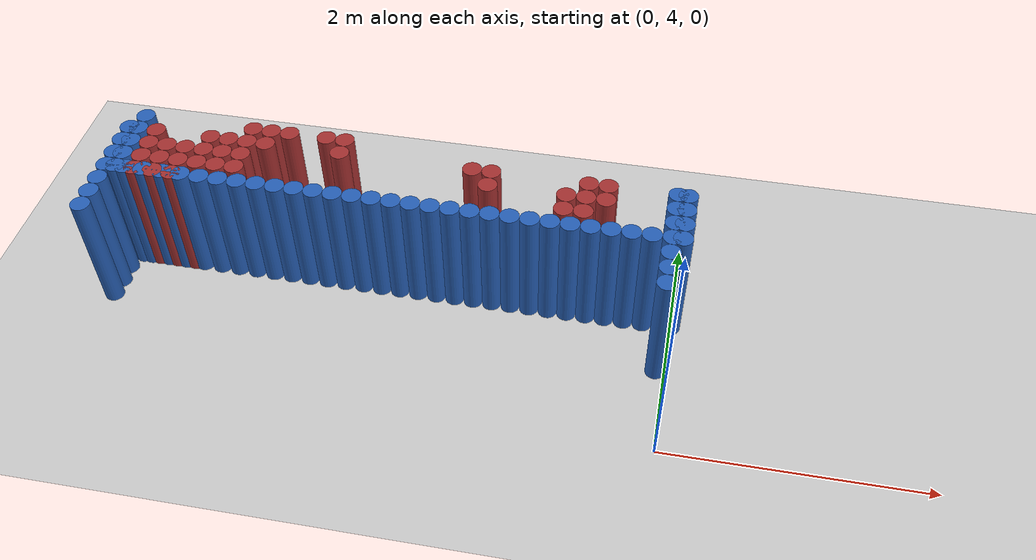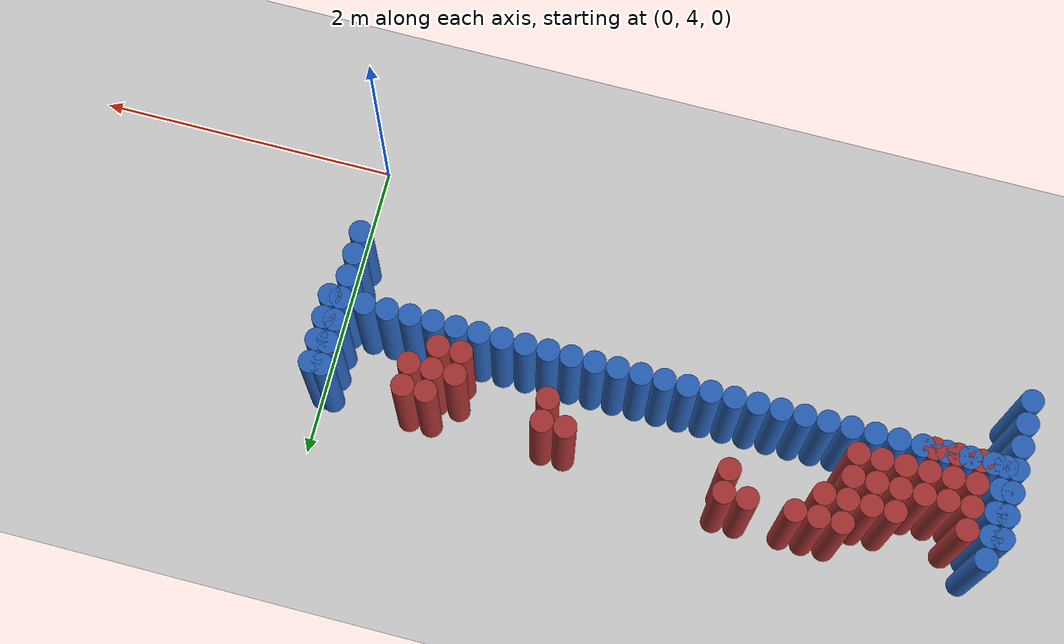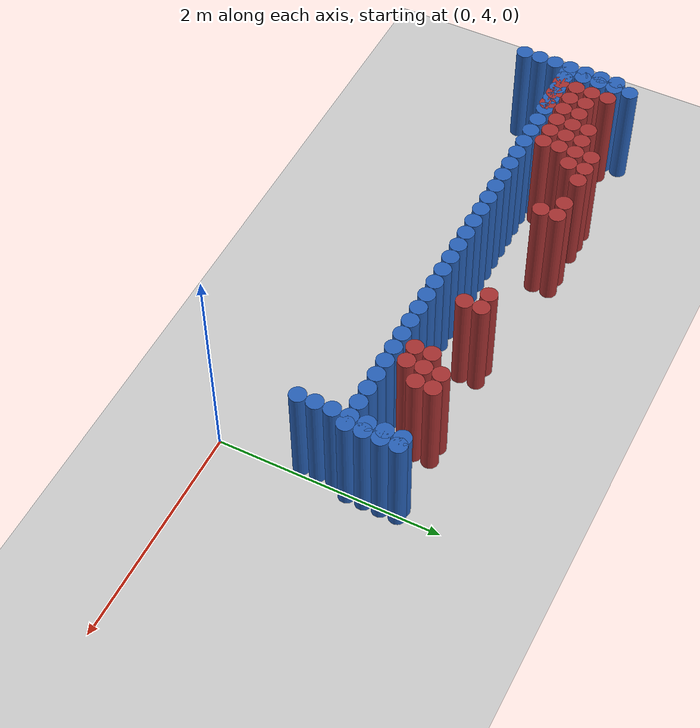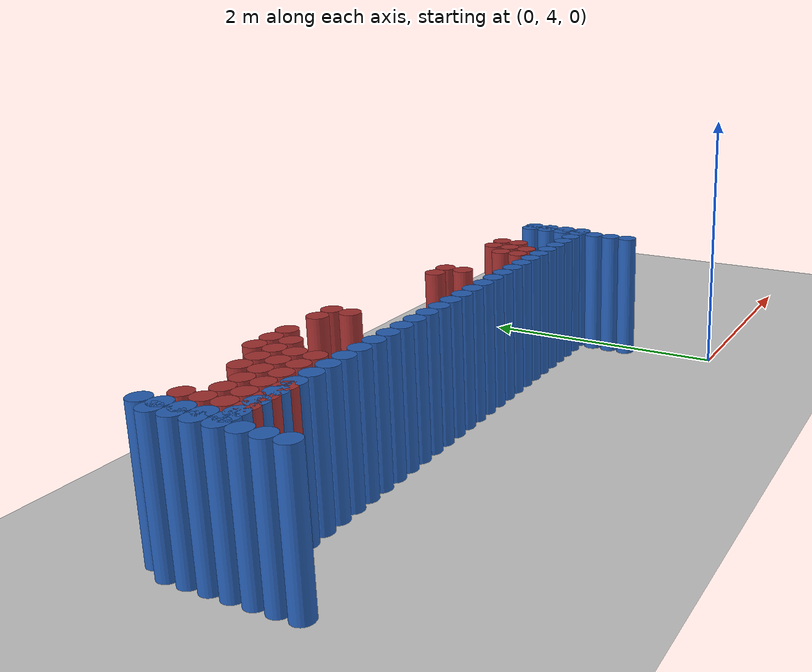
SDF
<sdf version="1.6">
 <world name="barn_world">
  <model name="ground_plane">
   <static>1</static>
   <link name="link">
    <collision name="collision">
     <geometry><plane><normal>0 0 1</normal><size>100 100</size></plane></geometry>
    </collision>
    <visual name="visual">
     <geometry><plane><normal>0 0 1</normal><size>100 100</size></plane></geometry>
     <material>
      <script><uri>file://media/materials/scripts/gazebo.material</uri><name>Gazebo/Grey</name></script>
     </material>
    </visual>
   </link>
  </model>
  <model name="unit_cylinder_90">
   <static>1</static>
   <pose>-0.0750 4.7250 0.5 0 0 0</pose>
   <link name="link">
    <collision name="collision">
     <geometry><cylinder><radius>0.075</radius><length>1</length></cylinder></geometry>
    </collision>
    <visual name="visual">
     <geometry><cylinder><radius>0.075</radius><length>1</length></cylinder></geometry>
     <material><ambient>0.152 0.379 0.72 1</ambient><diffuse>0.152 0.379 0.72 1</diffuse></material>
    </visual>
   </link>
  </model>
  <model name="unit_cylinder_91">
   <static>1</static>
   <pose>-4.4250 4.7250 0.5 0 0 0</pose>
   <link name="link">
    <collision name="collision">
     <geometry><cylinder><radius>0.075</radius><length>1</length></cylinder></geometry>
    </collision>
    <visual name="visual">
     <geometry><cylinder><radius>0.075</radius><length>1</length></cylinder></geometry>
     <material><ambient>0.152 0.379 0.72 1</ambient><diffuse>0.152 0.379 0.72 1</diffuse></material>
    </visual>
   </link>
  </model>
  <model name="unit_cylinder_92">
   <static>1</static>
   <pose>-0.0750 4.8750 0.5 0 0 0</pose>
   <link name="link">
    <collision name="collision">
     <geometry><cylinder><radius>0.075</radius><length>1</length></cylinder></geometry>
    </collision>
    <visual name="visual">
     <geometry><cylinder><radius>0.075</radius><length>1</length></cylinder></geometry>
     <material><ambient>0.152 0.379 0.72 1</ambient><diffuse>0.152 0.379 0.72 1</diffuse></material>
    </visual>
   </link>
  </model>
  <model name="unit_cylinder_93">
   <static>1</static>
   <pose>-4.4250 4.8750 0.5 0 0 0</pose>
   <link name="link">
    <collision name="collision">
     <geometry><cylinder><radius>0.075</radius><length>1</length></cylinder></geometry>
    </collision>
    <visual name="visual">
     <geometry><cylinder><radius>0.075</radius><length>1</length></cylinder></geometry>
     <material><ambient>0.152 0.379 0.72 1</ambient><diffuse>0.152 0.379 0.72 1</diffuse></material>
    </visual>
   </link>
  </model>
  <model name="unit_cylinder_94">
   <static>1</static>
   <pose>-0.0750 5.0250 0.5 0 0 0</pose>
   <link name="link">
    <collision name="collision">
     <geometry><cylinder><radius>0.075</radius><length>1</length></cylinder></geometry>
    </collision>
    <visual name="visual">
     <geometry><cylinder><radius>0.075</radius><length>1</length></cylinder></geometry>
     <material><ambient>0.152 0.379 0.72 1</ambient><diffuse>0.152 0.379 0.72 1</diffuse></material>
    </visual>
   </link>
  </model>
  <model name="unit_cylinder_95">
   <static>1</static>
   <pose>-4.4250 5.0250 0.5 0 0 0</pose>
   <link name="link">
    <collision name="collision">
     <geometry><cylinder><radius>0.075</radius><length>1</length></cylinder></geometry>
    </collision>
    <visual name="visual">
     <geometry><cylinder><radius>0.075</radius><length>1</length></cylinder></geometry>
     <material><ambient>0.152 0.379 0.72 1</ambient><diffuse>0.152 0.379 0.72 1</diffuse></material>
    </visual>
   </link>
  </model>
  <model name="unit_cylinder_96">
   <static>1</static>
   <pose>-0.0750 5.1750 0.5 0 0 0</pose>
   <link name="link">
    <collision name="collision">
     <geometry><cylinder><radius>0.075</radius><length>1</length></cylinder></geometry>
    </collision>
    <visual name="visual">
     <geometry><cylinder><radius>0.075</radius><length>1</length></cylinder></geometry>
     <material><ambient>0.152 0.379 0.72 1</ambient><diffuse>0.152 0.379 0.72 1</diffuse></material>
    </visual>
   </link>
  </model>
  <model name="unit_cylinder_97">
   <static>1</static>
   <pose>-0.2250 5.1750 0.5 0 0 0</pose>
   <link name="link">
    <collision name="collision">
     <geometry><cylinder><radius>0.075</radius><length>1</length></cylinder></geometry>
    </collision>
    <visual name="visual">
     <geometry><cylinder><radius>0.075</radius><length>1</length></cylinder></geometry>
     <material><ambient>0.152 0.379 0.72 1</ambient><diffuse>0.152 0.379 0.72 1</diffuse></material>
    </visual>
   </link>
  </model>
  <model name="unit_cylinder_98">
   <static>1</static>
   <pose>-0.3750 5.1750 0.5 0 0 0</pose>
   <link name="link">
    <collision name="collision">
     <geometry><cylinder><radius>0.075</radius><length>1</length></cylinder></geometry>
    </collision>
    <visual name="visual">
     <geometry><cylinder><radius>0.075</radius><length>1</length></cylinder></geometry>
     <material><ambient>0.152 0.379 0.72 1</ambient><diffuse>0.152 0.379 0.72 1</diffuse></material>
    </visual>
   </link>
  </model>
  <model name="unit_cylinder_99">
   <static>1</static>
   <pose>-0.5250 5.1750 0.5 0 0 0</pose>
   <link name="link">
    <collision name="collision">
     <geometry><cylinder><radius>0.075</radius><length>1</length></cylinder></geometry>
    </collision>
    <visual name="visual">
     <geometry><cylinder><radius>0.075</radius><length>1</length></cylinder></geometry>
     <material><ambient>0.152 0.379 0.72 1</ambient><diffuse>0.152 0.379 0.72 1</diffuse></material>
    </visual>
   </link>
  </model>
  <model name="unit_cylinder_100">
   <static>1</static>
   <pose>-0.6750 5.1750 0.5 0 0 0</pose>
   <link name="link">
    <collision name="collision">
     <geometry><cylinder><radius>0.075</radius><length>1</length></cylinder></geometry>
    </collision>
    <visual name="visual">
     <geometry><cylinder><radius>0.075</radius><length>1</length></cylinder></geometry>
     <material><ambient>0.152 0.379 0.72 1</ambient><diffuse>0.152 0.379 0.72 1</diffuse></material>
    </visual>
   </link>
  </model>
  <model name="unit_cylinder_101">
   <static>1</static>
   <pose>-0.8250 5.1750 0.5 0 0 0</pose>
   <link name="link">
    <collision name="collision">
     <geometry><cylinder><radius>0.075</radius><length>1</length></cylinder></geometry>
    </collision>
    <visual name="visual">
     <geometry><cylinder><radius>0.075</radius><length>1</length></cylinder></geometry>
     <material><ambient>0.152 0.379 0.72 1</ambient><diffuse>0.152 0.379 0.72 1</diffuse></material>
    </visual>
   </link>
  </model>
  <model name="unit_cylinder_102">
   <static>1</static>
   <pose>-0.9750 5.1750 0.5 0 0 0</pose>
   <link name="link">
    <collision name="collision">
     <geometry><cylinder><radius>0.075</radius><length>1</length></cylinder></geometry>
    </collision>
    <visual name="visual">
     <geometry><cylinder><radius>0.075</radius><length>1</length></cylinder></geometry>
     <material><ambient>0.152 0.379 0.72 1</ambient><diffuse>0.152 0.379 0.72 1</diffuse></material>
    </visual>
   </link>
  </model>
  <model name="unit_cylinder_103">
   <static>1</static>
   <pose>-1.1250 5.1750 0.5 0 0 0</pose>
   <link name="link">
    <collision name="collision">
     <geometry><cylinder><radius>0.075</radius><length>1</length></cylinder></geometry>
    </collision>
    <visual name="visual">
     <geometry><cylinder><radius>0.075</radius><length>1</length></cylinder></geometry>
     <material><ambient>0.152 0.379 0.72 1</ambient><diffuse>0.152 0.379 0.72 1</diffuse></material>
    </visual>
   </link>
  </model>
  <model name="unit_cylinder_104">
   <static>1</static>
   <pose>-1.2750 5.1750 0.5 0 0 0</pose>
   <link name="link">
    <collision name="collision">
     <geometry><cylinder><radius>0.075</radius><length>1</length></cylinder></geometry>
    </collision>
    <visual name="visual">
     <geometry><cylinder><radius>0.075</radius><length>1</length></cylinder></geometry>
     <material><ambient>0.152 0.379 0.72 1</ambient><diffuse>0.152 0.379 0.72 1</diffuse></material>
    </visual>
   </link>
  </model>
  <model name="unit_cylinder_105">
   <static>1</static>
   <pose>-1.4250 5.1750 0.5 0 0 0</pose>
   <link name="link">
    <collision name="collision">
     <geometry><cylinder><radius>0.075</radius><length>1</length></cylinder></geometry>
    </collision>
    <visual name="visual">
     <geometry><cylinder><radius>0.075</radius><length>1</length></cylinder></geometry>
     <material><ambient>0.152 0.379 0.72 1</ambient><diffuse>0.152 0.379 0.72 1</diffuse></material>
    </visual>
   </link>
  </model>
  <model name="unit_cylinder_106">
   <static>1</static>
   <pose>-1.5750 5.1750 0.5 0 0 0</pose>
   <link name="link">
    <collision name="collision">
     <geometry><cylinder><radius>0.075</radius><length>1</length></cylinder></geometry>
    </collision>
    <visual name="visual">
     <geometry><cylinder><radius>0.075</radius><length>1</length></cylinder></geometry>
     <material><ambient>0.152 0.379 0.72 1</ambient><diffuse>0.152 0.379 0.72 1</diffuse></material>
    </visual>
   </link>
  </model>
  <model name="unit_cylinder_107">
   <static>1</static>
   <pose>-1.7250 5.1750 0.5 0 0 0</pose>
   <link name="link">
    <collision name="collision">
     <geometry><cylinder><radius>0.075</radius><length>1</length></cylinder></geometry>
    </collision>
    <visual name="visual">
     <geometry><cylinder><radius>0.075</radius><length>1</length></cylinder></geometry>
     <material><ambient>0.152 0.379 0.72 1</ambient><diffuse>0.152 0.379 0.72 1</diffuse></material>
    </visual>
   </link>
  </model>
  <model name="unit_cylinder_108">
   <static>1</static>
   <pose>-1.8750 5.1750 0.5 0 0 0</pose>
   <link name="link">
    <collision name="collision">
     <geometry><cylinder><radius>0.075</radius><length>1</length></cylinder></geometry>
    </collision>
    <visual name="visual">
     <geometry><cylinder><radius>0.075</radius><length>1</length></cylinder></geometry>
     <material><ambient>0.152 0.379 0.72 1</ambient><diffuse>0.152 0.379 0.72 1</diffuse></material>
    </visual>
   </link>
  </model>
  <model name="unit_cylinder_109">
   <static>1</static>
   <pose>-2.0250 5.1750 0.5 0 0 0</pose>
   <link name="link">
    <collision name="collision">
     <geometry><cylinder><radius>0.075</radius><length>1</length></cylinder></geometry>
    </collision>
    <visual name="visual">
     <geometry><cylinder><radius>0.075</radius><length>1</length></cylinder></geometry>
     <material><ambient>0.152 0.379 0.72 1</ambient><diffuse>0.152 0.379 0.72 1</diffuse></material>
    </visual>
   </link>
  </model>
  <model name="unit_cylinder_110">
   <static>1</static>
   <pose>-2.1750 5.1750 0.5 0 0 0</pose>
   <link name="link">
    <collision name="collision">
     <geometry><cylinder><radius>0.075</radius><length>1</length></cylinder></geometry>
    </collision>
    <visual name="visual">
     <geometry><cylinder><radius>0.075</radius><length>1</length></cylinder></geometry>
     <material><ambient>0.152 0.379 0.72 1</ambient><diffuse>0.152 0.379 0.72 1</diffuse></material>
    </visual>
   </link>
  </model>
  <model name="unit_cylinder_111">
   <static>1</static>
   <pose>-2.3250 5.1750 0.5 0 0 0</pose>
   <link name="link">
    <collision name="collision">
     <geometry><cylinder><radius>0.075</radius><length>1</length></cylinder></geometry>
    </collision>
    <visual name="visual">
     <geometry><cylinder><radius>0.075</radius><length>1</length></cylinder></geometry>
     <material><ambient>0.152 0.379 0.72 1</ambient><diffuse>0.152 0.379 0.72 1</diffuse></material>
    </visual>
   </link>
  </model>
  <model name="unit_cylinder_112">
   <static>1</static>
   <pose>-2.4750 5.1750 0.5 0 0 0</pose>
   <link name="link">
    <collision name="collision">
     <geometry><cylinder><radius>0.075</radius><length>1</length></cylinder></geometry>
    </collision>
    <visual name="visual">
     <geometry><cylinder><radius>0.075</radius><length>1</length></cylinder></geometry>
     <material><ambient>0.152 0.379 0.72 1</ambient><diffuse>0.152 0.379 0.72 1</diffuse></material>
    </visual>
   </link>
  </model>
  <model name="unit_cylinder_113">
   <static>1</static>
   <pose>-2.6250 5.1750 0.5 0 0 0</pose>
   <link name="link">
    <collision name="collision">
     <geometry><cylinder><radius>0.075</radius><length>1</length></cylinder></geometry>
    </collision>
    <visual name="visual">
     <geometry><cylinder><radius>0.075</radius><length>1</length></cylinder></geometry>
     <material><ambient>0.152 0.379 0.72 1</ambient><diffuse>0.152 0.379 0.72 1</diffuse></material>
    </visual>
   </link>
  </model>
  <model name="unit_cylinder_114">
   <static>1</static>
   <pose>-2.7750 5.1750 0.5 0 0 0</pose>
   <link name="link">
    <collision name="collision">
     <geometry><cylinder><radius>0.075</radius><length>1</length></cylinder></geometry>
    </collision>
    <visual name="visual">
     <geometry><cylinder><radius>0.075</radius><length>1</length></cylinder></geometry>
     <material><ambient>0.152 0.379 0.72 1</ambient><diffuse>0.152 0.379 0.72 1</diffuse></material>
    </visual>
   </link>
  </model>
  <model name="unit_cylinder_115">
   <static>1</static>
   <pose>-2.9250 5.1750 0.5 0 0 0</pose>
   <link name="link">
    <collision name="collision">
     <geometry><cylinder><radius>0.075</radius><length>1</length></cylinder></geometry>
    </collision>
    <visual name="visual">
     <geometry><cylinder><radius>0.075</radius><length>1</length></cylinder></geometry>
     <material><ambient>0.152 0.379 0.72 1</ambient><diffuse>0.152 0.379 0.72 1</diffuse></material>
    </visual>
   </link>
  </model>
  <model name="unit_cylinder_116">
   <static>1</static>
   <pose>-3.0750 5.1750 0.5 0 0 0</pose>
   <link name="link">
    <collision name="collision">
     <geometry><cylinder><radius>0.075</radius><length>1</length></cylinder></geometry>
    </collision>
    <visual name="visual">
     <geometry><cylinder><radius>0.075</radius><length>1</length></cylinder></geometry>
     <material><ambient>0.152 0.379 0.72 1</ambient><diffuse>0.152 0.379 0.72 1</diffuse></material>
    </visual>
   </link>
  </model>
  <model name="unit_cylinder_117">
   <static>1</static>
   <pose>-3.2250 5.1750 0.5 0 0 0</pose>
   <link name="link">
    <collision name="collision">
     <geometry><cylinder><radius>0.075</radius><length>1</length></cylinder></geometry>
    </collision>
    <visual name="visual">
     <geometry><cylinder><radius>0.075</radius><length>1</length></cylinder></geometry>
     <material><ambient>0.152 0.379 0.72 1</ambient><diffuse>0.152 0.379 0.72 1</diffuse></material>
    </visual>
   </link>
  </model>
  <model name="unit_cylinder_118">
   <static>1</static>
   <pose>-3.3750 5.1750 0.5 0 0 0</pose>
   <link name="link">
    <collision name="collision">
     <geometry><cylinder><radius>0.075</radius><length>1</length></cylinder></geometry>
    </collision>
    <visual name="visual">
     <geometry><cylinder><radius>0.075</radius><length>1</length></cylinder></geometry>
     <material><ambient>0.152 0.379 0.72 1</ambient><diffuse>0.152 0.379 0.72 1</diffuse></material>
    </visual>
   </link>
  </model>
  <model name="unit_cylinder_119">
   <static>1</static>
   <pose>-3.5250 5.1750 0.5 0 0 0</pose>
   <link name="link">
    <collision name="collision">
     <geometry><cylinder><radius>0.075</radius><length>1</length></cylinder></geometry>
    </collision>
    <visual name="visual">
     <geometry><cylinder><radius>0.075</radius><length>1</length></cylinder></geometry>
     <material><ambient>0.152 0.379 0.72 1</ambient><diffuse>0.152 0.379 0.72 1</diffuse></material>
    </visual>
   </link>
  </model>
  <model name="unit_cylinder_120">
   <static>1</static>
   <pose>-3.6750 5.1750 0.5 0 0 0</pose>
   <link name="link">
    <collision name="collision">
     <geometry><cylinder><radius>0.075</radius><length>1</length></cylinder></geometry>
    </collision>
    <visual name="visual">
     <geometry><cylinder><radius>0.075</radius><length>1</length></cylinder></geometry>
     <material><ambient>0.152 0.379 0.72 1</ambient><diffuse>0.152 0.379 0.72 1</diffuse></material>
    </visual>
   </link>
  </model>
  <model name="unit_cylinder_121">
   <static>1</static>
   <pose>-3.8250 5.1750 0.5 0 0 0</pose>
   <link name="link">
    <collision name="collision">
     <geometry><cylinder><radius>0.075</radius><length>1</length></cylinder></geometry>
    </collision>
    <visual name="visual">
     <geometry><cylinder><radius>0.075</radius><length>1</length></cylinder></geometry>
     <material><ambient>0.152 0.379 0.72 1</ambient><diffuse>0.152 0.379 0.72 1</diffuse></material>
    </visual>
   </link>
  </model>
  <model name="unit_cylinder_122">
   <static>1</static>
   <pose>-3.9750 5.1750 0.5 0 0 0</pose>
   <link name="link">
    <collision name="collision">
     <geometry><cylinder><radius>0.075</radius><length>1</length></cylinder></geometry>
    </collision>
    <visual name="visual">
     <geometry><cylinder><radius>0.075</radius><length>1</length></cylinder></geometry>
     <material><ambient>0.152 0.379 0.72 1</ambient><diffuse>0.152 0.379 0.72 1</diffuse></material>
    </visual>
   </link>
  </model>
  <model name="unit_cylinder_123">
   <static>1</static>
   <pose>-4.1250 5.1750 0.5 0 0 0</pose>
   <link name="link">
    <collision name="collision">
     <geometry><cylinder><radius>0.075</radius><length>1</length></cylinder></geometry>
    </collision>
    <visual name="visual">
     <geometry><cylinder><radius>0.075</radius><length>1</length></cylinder></geometry>
     <material><ambient>0.152 0.379 0.72 1</ambient><diffuse>0.152 0.379 0.72 1</diffuse></material>
    </visual>
   </link>
  </model>
  <model name="unit_cylinder_124">
   <static>1</static>
   <pose>-4.2750 5.1750 0.5 0 0 0</pose>
   <link name="link">
    <collision name="collision">
     <geometry><cylinder><radius>0.075</radius><length>1</length></cylinder></geometry>
    </collision>
    <visual name="visual">
     <geometry><cylinder><radius>0.075</radius><length>1</length></cylinder></geometry>
     <material><ambient>0.152 0.379 0.72 1</ambient><diffuse>0.152 0.379 0.72 1</diffuse></material>
    </visual>
   </link>
  </model>
  <model name="unit_cylinder_125">
   <static>1</static>
   <pose>-4.4250 5.1750 0.5 0 0 0</pose>
   <link name="link">
    <collision name="collision">
     <geometry><cylinder><radius>0.075</radius><length>1</length></cylinder></geometry>
    </collision>
    <visual name="visual">
     <geometry><cylinder><radius>0.075</radius><length>1</length></cylinder></geometry>
     <material><ambient>0.152 0.379 0.72 1</ambient><diffuse>0.152 0.379 0.72 1</diffuse></material>
    </visual>
   </link>
  </model>
  <model name="unit_cylinder_126">
   <static>1</static>
   <pose>-4.3500 5.1750 0.5 0 0 0</pose>
   <link name="link">
    <collision name="collision">
     <geometry><cylinder><radius>0.075</radius><length>1</length></cylinder></geometry>
    </collision>
    <visual name="visual">
     <geometry><cylinder><radius>0.075</radius><length>1</length></cylinder></geometry>
     <material><ambient>0.152 0.379 0.72 1</ambient><diffuse>0.152 0.379 0.72 1</diffuse></material>
    </visual>
   </link>
  </model>
  <model name="unit_cylinder_127">
   <static>1</static>
   <pose>-4.3500 5.3250 0.5 0 0 0</pose>
   <link name="link">
    <collision name="collision">
     <geometry><cylinder><radius>0.075</radius><length>1</length></cylinder></geometry>
    </collision>
    <visual name="visual">
     <geometry><cylinder><radius>0.075</radius><length>1</length></cylinder></geometry>
     <material><ambient>0.152 0.379 0.72 1</ambient><diffuse>0.152 0.379 0.72 1</diffuse></material>
    </visual>
   </link>
  </model>
  <model name="unit_cylinder_128">
   <static>1</static>
   <pose>-4.3500 5.4750 0.5 0 0 0</pose>
   <link name="link">
    <collision name="collision">
     <geometry><cylinder><radius>0.075</radius><length>1</length></cylinder></geometry>
    </collision>
    <visual name="visual">
     <geometry><cylinder><radius>0.075</radius><length>1</length></cylinder></geometry>
     <material><ambient>0.152 0.379 0.72 1</ambient><diffuse>0.152 0.379 0.72 1</diffuse></material>
    </visual>
   </link>
  </model>
  <model name="unit_cylinder_129">
   <static>1</static>
   <pose>-4.3500 5.6250 0.5 0 0 0</pose>
   <link name="link">
    <collision name="collision">
     <geometry><cylinder><radius>0.075</radius><length>1</length></cylinder></geometry>
    </collision>
    <visual name="visual">
     <geometry><cylinder><radius>0.075</radius><length>1</length></cylinder></geometry>
     <material><ambient>0.152 0.379 0.72 1</ambient><diffuse>0.152 0.379 0.72 1</diffuse></material>
    </visual>
   </link>
  </model>
  <model name="unit_cylinder_130">
   <static>1</static>
   <pose>-4.3500 5.7750 0.5 0 0 0</pose>
   <link name="link">
    <collision name="collision">
     <geometry><cylinder><radius>0.075</radius><length>1</length></cylinder></geometry>
    </collision>
    <visual name="visual">
     <geometry><cylinder><radius>0.075</radius><length>1</length></cylinder></geometry>
     <material><ambient>0.152 0.379 0.72 1</ambient><diffuse>0.152 0.379 0.72 1</diffuse></material>
    </visual>
   </link>
  </model>
  <model name="unit_cylinder_156">
   <static>1</static>
   <pose>-4.2000 5.1750 0.5 0 0 0</pose>
   <link name="link">
    <collision name="collision">
     <geometry><cylinder><radius>0.075</radius><length>1</length></cylinder></geometry>
    </collision>
    <visual name="visual">
     <geometry><cylinder><radius>0.075</radius><length>1</length></cylinder></geometry>
     <material><ambient>0.648 0.192 0.192 1</ambient><diffuse>0.648 0.192 0.192 1</diffuse></material>
    </visual>
   </link>
  </model>
  <model name="unit_cylinder_157">
   <static>1</static>
   <pose>-4.2000 5.3250 0.5 0 0 0</pose>
   <link name="link">
    <collision name="collision">
     <geometry><cylinder><radius>0.075</radius><length>1</length></cylinder></geometry>
    </collision>
    <visual name="visual">
     <geometry><cylinder><radius>0.075</radius><length>1</length></cylinder></geometry>
     <material><ambient>0.648 0.192 0.192 1</ambient><diffuse>0.648 0.192 0.192 1</diffuse></material>
    </visual>
   </link>
  </model>
  <model name="unit_cylinder_158">
   <static>1</static>
   <pose>-4.2000 5.4750 0.5 0 0 0</pose>
   <link name="link">
    <collision name="collision">
     <geometry><cylinder><radius>0.075</radius><length>1</length></cylinder></geometry>
    </collision>
    <visual name="visual">
     <geometry><cylinder><radius>0.075</radius><length>1</length></cylinder></geometry>
     <material><ambient>0.648 0.192 0.192 1</ambient><diffuse>0.648 0.192 0.192 1</diffuse></material>
    </visual>
   </link>
  </model>
  <model name="unit_cylinder_159">
   <static>1</static>
   <pose>-4.2000 5.6250 0.5 0 0 0</pose>
   <link name="link">
    <collision name="collision">
     <geometry><cylinder><radius>0.075</radius><length>1</length></cylinder></geometry>
    </collision>
    <visual name="visual">
     <geometry><cylinder><radius>0.075</radius><length>1</length></cylinder></geometry>
     <material><ambient>0.648 0.192 0.192 1</ambient><diffuse>0.648 0.192 0.192 1</diffuse></material>
    </visual>
   </link>
  </model>
  <model name="unit_cylinder_179">
   <static>1</static>
   <pose>-4.0500 5.1750 0.5 0 0 0</pose>
   <link name="link">
    <collision name="collision">
     <geometry><cylinder><radius>0.075</radius><length>1</length></cylinder></geometry>
    </collision>
    <visual name="visual">
     <geometry><cylinder><radius>0.075</radius><length>1</length></cylinder></geometry>
     <material><ambient>0.648 0.192 0.192 1</ambient><diffuse>0.648 0.192 0.192 1</diffuse></material>
    </visual>
   </link>
  </model>
  <model name="unit_cylinder_180">
   <static>1</static>
   <pose>-4.0500 5.3250 0.5 0 0 0</pose>
   <link name="link">
    <collision name="collision">
     <geometry><cylinder><radius>0.075</radius><length>1</length></cylinder></geometry>
    </collision>
    <visual name="visual">
     <geometry><cylinder><radius>0.075</radius><length>1</length></cylinder></geometry>
     <material><ambient>0.648 0.192 0.192 1</ambient><diffuse>0.648 0.192 0.192 1</diffuse></material>
    </visual>
   </link>
  </model>
  <model name="unit_cylinder_181">
   <static>1</static>
   <pose>-4.0500 5.4750 0.5 0 0 0</pose>
   <link name="link">
    <collision name="collision">
     <geometry><cylinder><radius>0.075</radius><length>1</length></cylinder></geometry>
    </collision>
    <visual name="visual">
     <geometry><cylinder><radius>0.075</radius><length>1</length></cylinder></geometry>
     <material><ambient>0.648 0.192 0.192 1</ambient><diffuse>0.648 0.192 0.192 1</diffuse></material>
    </visual>
   </link>
  </model>
  <model name="unit_cylinder_190">
   <static>1</static>
   <pose>-3.9000 5.1750 0.5 0 0 0</pose>
   <link name="link">
    <collision name="collision">
     <geometry><cylinder><radius>0.075</radius><length>1</length></cylinder></geometry>
    </collision>
    <visual name="visual">
     <geometry><cylinder><radius>0.075</radius><length>1</length></cylinder></geometry>
     <material><ambient>0.648 0.192 0.192 1</ambient><diffuse>0.648 0.192 0.192 1</diffuse></material>
    </visual>
   </link>
  </model>
  <model name="unit_cylinder_191">
   <static>1</static>
   <pose>-3.9000 5.3250 0.5 0 0 0</pose>
   <link name="link">
    <collision name="collision">
     <geometry><cylinder><radius>0.075</radius><length>1</length></cylinder></geometry>
    </collision>
    <visual name="visual">
     <geometry><cylinder><radius>0.075</radius><length>1</length></cylinder></geometry>
     <material><ambient>0.648 0.192 0.192 1</ambient><diffuse>0.648 0.192 0.192 1</diffuse></material>
    </visual>
   </link>
  </model>
  <model name="unit_cylinder_192">
   <static>1</static>
   <pose>-3.9000 5.4750 0.5 0 0 0</pose>
   <link name="link">
    <collision name="collision">
     <geometry><cylinder><radius>0.075</radius><length>1</length></cylinder></geometry>
    </collision>
    <visual name="visual">
     <geometry><cylinder><radius>0.075</radius><length>1</length></cylinder></geometry>
     <material><ambient>0.648 0.192 0.192 1</ambient><diffuse>0.648 0.192 0.192 1</diffuse></material>
    </visual>
   </link>
  </model>
  <model name="unit_cylinder_198">
   <static>1</static>
   <pose>-3.7500 5.3250 0.5 0 0 0</pose>
   <link name="link">
    <collision name="collision">
     <geometry><cylinder><radius>0.075</radius><length>1</length></cylinder></geometry>
    </collision>
    <visual name="visual">
     <geometry><cylinder><radius>0.075</radius><length>1</length></cylinder></geometry>
     <material><ambient>0.648 0.192 0.192 1</ambient><diffuse>0.648 0.192 0.192 1</diffuse></material>
    </visual>
   </link>
  </model>
  <model name="unit_cylinder_199">
   <static>1</static>
   <pose>-3.7500 5.4750 0.5 0 0 0</pose>
   <link name="link">
    <collision name="collision">
     <geometry><cylinder><radius>0.075</radius><length>1</length></cylinder></geometry>
    </collision>
    <visual name="visual">
     <geometry><cylinder><radius>0.075</radius><length>1</length></cylinder></geometry>
     <material><ambient>0.648 0.192 0.192 1</ambient><diffuse>0.648 0.192 0.192 1</diffuse></material>
    </visual>
   </link>
  </model>
  <model name="unit_cylinder_200">
   <static>1</static>
   <pose>-3.7500 5.6250 0.5 0 0 0</pose>
   <link name="link">
    <collision name="collision">
     <geometry><cylinder><radius>0.075</radius><length>1</length></cylinder></geometry>
    </collision>
    <visual name="visual">
     <geometry><cylinder><radius>0.075</radius><length>1</length></cylinder></geometry>
     <material><ambient>0.648 0.192 0.192 1</ambient><diffuse>0.648 0.192 0.192 1</diffuse></material>
    </visual>
   </link>
  </model>
  <model name="unit_cylinder_204">
   <static>1</static>
   <pose>-3.6000 5.3250 0.5 0 0 0</pose>
   <link name="link">
    <collision name="collision">
     <geometry><cylinder><radius>0.075</radius><length>1</length></cylinder></geometry>
    </collision>
    <visual name="visual">
     <geometry><cylinder><radius>0.075</radius><length>1</length></cylinder></geometry>
     <material><ambient>0.648 0.192 0.192 1</ambient><diffuse>0.648 0.192 0.192 1</diffuse></material>
    </visual>
   </link>
  </model>
  <model name="unit_cylinder_205">
   <static>1</static>
   <pose>-3.6000 5.4750 0.5 0 0 0</pose>
   <link name="link">
    <collision name="collision">
     <geometry><cylinder><radius>0.075</radius><length>1</length></cylinder></geometry>
    </collision>
    <visual name="visual">
     <geometry><cylinder><radius>0.075</radius><length>1</length></cylinder></geometry>
     <material><ambient>0.648 0.192 0.192 1</ambient><diffuse>0.648 0.192 0.192 1</diffuse></material>
    </visual>
   </link>
  </model>
  <model name="unit_cylinder_206">
   <static>1</static>
   <pose>-3.6000 5.6250 0.5 0 0 0</pose>
   <link name="link">
    <collision name="collision">
     <geometry><cylinder><radius>0.075</radius><length>1</length></cylinder></geometry>
    </collision>
    <visual name="visual">
     <geometry><cylinder><radius>0.075</radius><length>1</length></cylinder></geometry>
     <material><ambient>0.648 0.192 0.192 1</ambient><diffuse>0.648 0.192 0.192 1</diffuse></material>
    </visual>
   </link>
  </model>
  <model name="unit_cylinder_211">
   <static>1</static>
   <pose>-3.4500 5.3250 0.5 0 0 0</pose>
   <link name="link">
    <collision name="collision">
     <geometry><cylinder><radius>0.075</radius><length>1</length></cylinder></geometry>
    </collision>
    <visual name="visual">
     <geometry><cylinder><radius>0.075</radius><length>1</length></cylinder></geometry>
     <material><ambient>0.648 0.192 0.192 1</ambient><diffuse>0.648 0.192 0.192 1</diffuse></material>
    </visual>
   </link>
  </model>
  <model name="unit_cylinder_212">
   <static>1</static>
   <pose>-3.4500 5.4750 0.5 0 0 0</pose>
   <link name="link">
    <collision name="collision">
     <geometry><cylinder><radius>0.075</radius><length>1</length></cylinder></geometry>
    </collision>
    <visual name="visual">
     <geometry><cylinder><radius>0.075</radius><length>1</length></cylinder></geometry>
     <material><ambient>0.648 0.192 0.192 1</ambient><diffuse>0.648 0.192 0.192 1</diffuse></material>
    </visual>
   </link>
  </model>
  <model name="unit_cylinder_213">
   <static>1</static>
   <pose>-3.4500 5.6250 0.5 0 0 0</pose>
   <link name="link">
    <collision name="collision">
     <geometry><cylinder><radius>0.075</radius><length>1</length></cylinder></geometry>
    </collision>
    <visual name="visual">
     <geometry><cylinder><radius>0.075</radius><length>1</length></cylinder></geometry>
     <material><ambient>0.648 0.192 0.192 1</ambient><diffuse>0.648 0.192 0.192 1</diffuse></material>
    </visual>
   </link>
  </model>
  <model name="unit_cylinder_214">
   <static>1</static>
   <pose>-3.4500 5.7750 0.5 0 0 0</pose>
   <link name="link">
    <collision name="collision">
     <geometry><cylinder><radius>0.075</radius><length>1</length></cylinder></geometry>
    </collision>
    <visual name="visual">
     <geometry><cylinder><radius>0.075</radius><length>1</length></cylinder></geometry>
     <material><ambient>0.648 0.192 0.192 1</ambient><diffuse>0.648 0.192 0.192 1</diffuse></material>
    </visual>
   </link>
  </model>
  <model name="unit_cylinder_221">
   <static>1</static>
   <pose>-3.3000 5.6250 0.5 0 0 0</pose>
   <link name="link">
    <collision name="collision">
     <geometry><cylinder><radius>0.075</radius><length>1</length></cylinder></geometry>
    </collision>
    <visual name="visual">
     <geometry><cylinder><radius>0.075</radius><length>1</length></cylinder></geometry>
     <material><ambient>0.648 0.192 0.192 1</ambient><diffuse>0.648 0.192 0.192 1</diffuse></material>
    </visual>
   </link>
  </model>
  <model name="unit_cylinder_222">
   <static>1</static>
   <pose>-3.3000 5.7750 0.5 0 0 0</pose>
   <link name="link">
    <collision name="collision">
     <geometry><cylinder><radius>0.075</radius><length>1</length></cylinder></geometry>
    </collision>
    <visual name="visual">
     <geometry><cylinder><radius>0.075</radius><length>1</length></cylinder></geometry>
     <material><ambient>0.648 0.192 0.192 1</ambient><diffuse>0.648 0.192 0.192 1</diffuse></material>
    </visual>
   </link>
  </model>
  <model name="unit_cylinder_231">
   <static>1</static>
   <pose>-3.1500 5.7750 0.5 0 0 0</pose>
   <link name="link">
    <collision name="collision">
     <geometry><cylinder><radius>0.075</radius><length>1</length></cylinder></geometry>
    </collision>
    <visual name="visual">
     <geometry><cylinder><radius>0.075</radius><length>1</length></cylinder></geometry>
     <material><ambient>0.648 0.192 0.192 1</ambient><diffuse>0.648 0.192 0.192 1</diffuse></material>
    </visual>
   </link>
  </model>
  <model name="unit_cylinder_245">
   <static>1</static>
   <pose>-2.8500 5.7750 0.5 0 0 0</pose>
   <link name="link">
    <collision name="collision">
     <geometry><cylinder><radius>0.075</radius><length>1</length></cylinder></geometry>
    </collision>
    <visual name="visual">
     <geometry><cylinder><radius>0.075</radius><length>1</length></cylinder></geometry>
     <material><ambient>0.648 0.192 0.192 1</ambient><diffuse>0.648 0.192 0.192 1</diffuse></material>
    </visual>
   </link>
  </model>
  <model name="unit_cylinder_250">
   <static>1</static>
   <pose>-2.7000 5.6250 0.5 0 0 0</pose>
   <link name="link">
    <collision name="collision">
     <geometry><cylinder><radius>0.075</radius><length>1</length></cylinder></geometry>
    </collision>
    <visual name="visual">
     <geometry><cylinder><radius>0.075</radius><length>1</length></cylinder></geometry>
     <material><ambient>0.648 0.192 0.192 1</ambient><diffuse>0.648 0.192 0.192 1</diffuse></material>
    </visual>
   </link>
  </model>
  <model name="unit_cylinder_251">
   <static>1</static>
   <pose>-2.7000 5.7750 0.5 0 0 0</pose>
   <link name="link">
    <collision name="collision">
     <geometry><cylinder><radius>0.075</radius><length>1</length></cylinder></geometry>
    </collision>
    <visual name="visual">
     <geometry><cylinder><radius>0.075</radius><length>1</length></cylinder></geometry>
     <material><ambient>0.648 0.192 0.192 1</ambient><diffuse>0.648 0.192 0.192 1</diffuse></material>
    </visual>
   </link>
  </model>
  <model name="unit_cylinder_277">
   <static>1</static>
   <pose>-1.6500 5.6250 0.5 0 0 0</pose>
   <link name="link">
    <collision name="collision">
     <geometry><cylinder><radius>0.075</radius><length>1</length></cylinder></geometry>
    </collision>
    <visual name="visual">
     <geometry><cylinder><radius>0.075</radius><length>1</length></cylinder></geometry>
     <material><ambient>0.648 0.192 0.192 1</ambient><diffuse>0.648 0.192 0.192 1</diffuse></material>
    </visual>
   </link>
  </model>
  <model name="unit_cylinder_281">
   <static>1</static>
   <pose>-1.5000 5.4750 0.5 0 0 0</pose>
   <link name="link">
    <collision name="collision">
     <geometry><cylinder><radius>0.075</radius><length>1</length></cylinder></geometry>
    </collision>
    <visual name="visual">
     <geometry><cylinder><radius>0.075</radius><length>1</length></cylinder></geometry>
     <material><ambient>0.648 0.192 0.192 1</ambient><diffuse>0.648 0.192 0.192 1</diffuse></material>
    </visual>
   </link>
  </model>
  <model name="unit_cylinder_282">
   <static>1</static>
   <pose>-1.5000 5.6250 0.5 0 0 0</pose>
   <link name="link">
    <collision name="collision">
     <geometry><cylinder><radius>0.075</radius><length>1</length></cylinder></geometry>
    </collision>
    <visual name="visual">
     <geometry><cylinder><radius>0.075</radius><length>1</length></cylinder></geometry>
     <material><ambient>0.648 0.192 0.192 1</ambient><diffuse>0.648 0.192 0.192 1</diffuse></material>
    </visual>
   </link>
  </model>
  <model name="unit_cylinder_297">
   <static>1</static>
   <pose>-0.9000 5.3250 0.5 0 0 0</pose>
   <link name="link">
    <collision name="collision">
     <geometry><cylinder><radius>0.075</radius><length>1</length></cylinder></geometry>
    </collision>
    <visual name="visual">
     <geometry><cylinder><radius>0.075</radius><length>1</length></cylinder></geometry>
     <material><ambient>0.648 0.192 0.192 1</ambient><diffuse>0.648 0.192 0.192 1</diffuse></material>
    </visual>
   </link>
  </model>
  <model name="unit_cylinder_298">
   <static>1</static>
   <pose>-0.9000 5.4750 0.5 0 0 0</pose>
   <link name="link">
    <collision name="collision">
     <geometry><cylinder><radius>0.075</radius><length>1</length></cylinder></geometry>
    </collision>
    <visual name="visual">
     <geometry><cylinder><radius>0.075</radius><length>1</length></cylinder></geometry>
     <material><ambient>0.648 0.192 0.192 1</ambient><diffuse>0.648 0.192 0.192 1</diffuse></material>
    </visual>
   </link>
  </model>
  <model name="unit_cylinder_300">
   <static>1</static>
   <pose>-0.7500 5.3250 0.5 0 0 0</pose>
   <link name="link">
    <collision name="collision">
     <geometry><cylinder><radius>0.075</radius><length>1</length></cylinder></geometry>
    </collision>
    <visual name="visual">
     <geometry><cylinder><radius>0.075</radius><length>1</length></cylinder></geometry>
     <material><ambient>0.648 0.192 0.192 1</ambient><diffuse>0.648 0.192 0.192 1</diffuse></material>
    </visual>
   </link>
  </model>
  <model name="unit_cylinder_301">
   <static>1</static>
   <pose>-0.7500 5.4750 0.5 0 0 0</pose>
   <link name="link">
    <collision name="collision">
     <geometry><cylinder><radius>0.075</radius><length>1</length></cylinder></geometry>
    </collision>
    <visual name="visual">
     <geometry><cylinder><radius>0.075</radius><length>1</length></cylinder></geometry>
     <material><ambient>0.648 0.192 0.192 1</ambient><diffuse>0.648 0.192 0.192 1</diffuse></material>
    </visual>
   </link>
  </model>
  <model name="unit_cylinder_302">
   <static>1</static>
   <pose>-0.7500 5.6250 0.5 0 0 0</pose>
   <link name="link">
    <collision name="collision">
     <geometry><cylinder><radius>0.075</radius><length>1</length></cylinder></geometry>
    </collision>
    <visual name="visual">
     <geometry><cylinder><radius>0.075</radius><length>1</length></cylinder></geometry>
     <material><ambient>0.648 0.192 0.192 1</ambient><diffuse>0.648 0.192 0.192 1</diffuse></material>
    </visual>
   </link>
  </model>
  <model name="unit_cylinder_304">
   <static>1</static>
   <pose>-0.6000 5.4750 0.5 0 0 0</pose>
   <link name="link">
    <collision name="collision">
     <geometry><cylinder><radius>0.075</radius><length>1</length></cylinder></geometry>
    </collision>
    <visual name="visual">
     <geometry><cylinder><radius>0.075</radius><length>1</length></cylinder></geometry>
     <material><ambient>0.648 0.192 0.192 1</ambient><diffuse>0.648 0.192 0.192 1</diffuse></material>
    </visual>
   </link>
  </model>
  <model name="unit_cylinder_305">
   <static>1</static>
   <pose>-0.6000 5.6250 0.5 0 0 0</pose>
   <link name="link">
    <collision name="collision">
     <geometry><cylinder><radius>0.075</radius><length>1</length></cylinder></geometry>
    </collision>
    <visual name="visual">
     <geometry><cylinder><radius>0.075</radius><length>1</length></cylinder></geometry>
     <material><ambient>0.648 0.192 0.192 1</ambient><diffuse>0.648 0.192 0.192 1</diffuse></material>
    </visual>
   </link>
  </model>
  <model name="unit_cylinder_330">
   <static>1</static>
   <pose>0.0000 5.1750 0.5 0 0 0</pose>
   <link name="link">
    <collision name="collision">
     <geometry><cylinder><radius>0.075</radius><length>1</length></cylinder></geometry>
    </collision>
    <visual name="visual">
     <geometry><cylinder><radius>0.075</radius><length>1</length></cylinder></geometry>
     <material><ambient>0.152 0.379 0.72 1</ambient><diffuse>0.152 0.379 0.72 1</diffuse></material>
    </visual>
   </link>
  </model>
  <model name="unit_cylinder_331">
   <static>1</static>
   <pose>0.0000 5.3250 0.5 0 0 0</pose>
   <link name="link">
    <collision name="collision">
     <geometry><cylinder><radius>0.075</radius><length>1</length></cylinder></geometry>
    </collision>
    <visual name="visual">
     <geometry><cylinder><radius>0.075</radius><length>1</length></cylinder></geometry>
     <material><ambient>0.152 0.379 0.72 1</ambient><diffuse>0.152 0.379 0.72 1</diffuse></material>
    </visual>
   </link>
  </model>
  <model name="unit_cylinder_332">
   <static>1</static>
   <pose>0.0000 5.4750 0.5 0 0 0</pose>
   <link name="link">
    <collision name="collision">
     <geometry><cylinder><radius>0.075</radius><length>1</length></cylinder></geometry>
    </collision>
    <visual name="visual">
     <geometry><cylinder><radius>0.075</radius><length>1</length></cylinder></geometry>
     <material><ambient>0.152 0.379 0.72 1</ambient><diffuse>0.152 0.379 0.72 1</diffuse></material>
    </visual>
   </link>
  </model>
  <model name="unit_cylinder_333">
   <static>1</static>
   <pose>0.0000 5.6250 0.5 0 0 0</pose>
   <link name="link">
    <collision name="collision">
     <geometry><cylinder><radius>0.075</radius><length>1</length></cylinder></geometry>
    </collision>
    <visual name="visual">
     <geometry><cylinder><radius>0.075</radius><length>1</length></cylinder></geometry>
     <material><ambient>0.152 0.379 0.72 1</ambient><diffuse>0.152 0.379 0.72 1</diffuse></material>
    </visual>
   </link>
  </model>
  <model name="unit_cylinder_390">
   <static>1</static>
   <pose>-0.0750 5.1750 0.5 0 0 0</pose>
   <link name="link">
    <collision name="collision">
     <geometry><cylinder><radius>0.075</radius><length>1</length></cylinder></geometry>
    </collision>
    <visual name="visual">
     <geometry><cylinder><radius>0.075</radius><length>1</length></cylinder></geometry>
     <material><ambient>0.152 0.379 0.72 1</ambient><diffuse>0.152 0.379 0.72 1</diffuse></material>
    </visual>
   </link>
  </model>
  <model name="unit_cylinder_391">
   <static>1</static>
   <pose>-4.4250 5.1750 0.5 0 0 0</pose>
   <link name="link">
    <collision name="collision">
     <geometry><cylinder><radius>0.075</radius><length>1</length></cylinder></geometry>
    </collision>
    <visual name="visual">
     <geometry><cylinder><radius>0.075</radius><length>1</length></cylinder></geometry>
     <material><ambient>0.152 0.379 0.72 1</ambient><diffuse>0.152 0.379 0.72 1</diffuse></material>
    </visual>
   </link>
  </model>
  <model name="unit_cylinder_392">
   <static>1</static>
   <pose>-0.0750 5.3250 0.5 0 0 0</pose>
   <link name="link">
    <collision name="collision">
     <geometry><cylinder><radius>0.075</radius><length>1</length></cylinder></geometry>
    </collision>
    <visual name="visual">
     <geometry><cylinder><radius>0.075</radius><length>1</length></cylinder></geometry>
     <material><ambient>0.152 0.379 0.72 1</ambient><diffuse>0.152 0.379 0.72 1</diffuse></material>
    </visual>
   </link>
  </model>
  <model name="unit_cylinder_393">
   <static>1</static>
   <pose>-4.4250 5.3250 0.5 0 0 0</pose>
   <link name="link">
    <collision name="collision">
     <geometry><cylinder><radius>0.075</radius><length>1</length></cylinder></geometry>
    </collision>
    <visual name="visual">
     <geometry><cylinder><radius>0.075</radius><length>1</length></cylinder></geometry>
     <material><ambient>0.152 0.379 0.72 1</ambient><diffuse>0.152 0.379 0.72 1</diffuse></material>
    </visual>
   </link>
  </model>
  <model name="unit_cylinder_394">
   <static>1</static>
   <pose>-0.0750 5.4750 0.5 0 0 0</pose>
   <link name="link">
    <collision name="collision">
     <geometry><cylinder><radius>0.075</radius><length>1</length></cylinder></geometry>
    </collision>
    <visual name="visual">
     <geometry><cylinder><radius>0.075</radius><length>1</length></cylinder></geometry>
     <material><ambient>0.152 0.379 0.72 1</ambient><diffuse>0.152 0.379 0.72 1</diffuse></material>
    </visual>
   </link>
  </model>
  <model name="unit_cylinder_395">
   <static>1</static>
   <pose>-4.4250 5.4750 0.5 0 0 0</pose>
   <link name="link">
    <collision name="collision">
     <geometry><cylinder><radius>0.075</radius><length>1</length></cylinder></geometry>
    </collision>
    <visual name="visual">
     <geometry><cylinder><radius>0.075</radius><length>1</length></cylinder></geometry>
     <material><ambient>0.152 0.379 0.72 1</ambient><diffuse>0.152 0.379 0.72 1</diffuse></material>
    </visual>
   </link>
  </model>
  <model name="unit_cylinder_396">
   <static>1</static>
   <pose>-0.0750 5.6250 0.5 0 0 0</pose>
   <link name="link">
    <collision name="collision">
     <geometry><cylinder><radius>0.075</radius><length>1</length></cylinder></geometry>
    </collision>
    <visual name="visual">
     <geometry><cylinder><radius>0.075</radius><length>1</length></cylinder></geometry>
     <material><ambient>0.152 0.379 0.72 1</ambient><diffuse>0.152 0.379 0.72 1</diffuse></material>
    </visual>
   </link>
  </model>
  <model name="unit_cylinder_397">
   <static>1</static>
   <pose>-4.4250 5.6250 0.5 0 0 0</pose>
   <link name="link">
    <collision name="collision">
     <geometry><cylinder><radius>0.075</radius><length>1</length></cylinder></geometry>
    </collision>
    <visual name="visual">
     <geometry><cylinder><radius>0.075</radius><length>1</length></cylinder></geometry>
     <material><ambient>0.152 0.379 0.72 1</ambient><diffuse>0.152 0.379 0.72 1</diffuse></material>
    </visual>
   </link>
  </model>
 </world>
</sdf>
